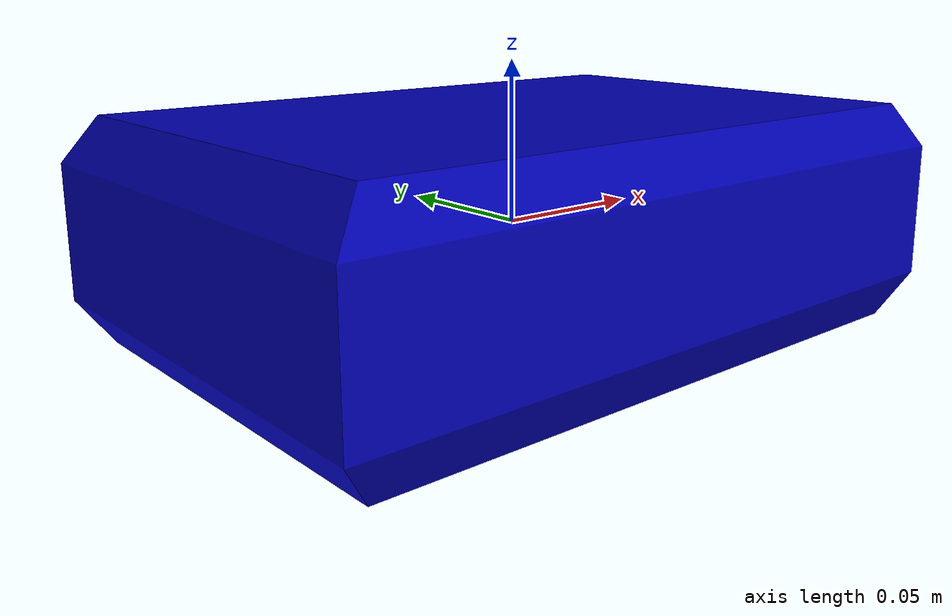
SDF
<sdf version='1.6'>
  <model name="beacon">
    <static>true</static>

    <link name="beacon_link">
      <pose>0 0 0 0 0 0</pose>

      <visual name="beacon_visual">
        <geometry>
          <mesh>
            <uri>model://models/uwb_beacon/meshes/beacon.stl</uri>
            <scale>1 1 1</scale>
          </mesh>
        </geometry>
        <material>
          <ambient> 0.0 0.0 0.6 1</ambient>
          <diffuse> 0.0 0.0 0.7 1</diffuse>
          <specular>0.5 0.5 0.5 1</specular>
          <emissive>0.0 0.0 0.2 1</emissive>
        </material>
      </visual>

      <collision name="beacon_colission">
        <geometry>
          <mesh>
            <uri>model://models/uwb_beacon/meshes/beacon.stl</uri>
            <scale>1 1 1</scale>
          </mesh>
        </geometry>
      </collision>

    </link>
  </model>
</sdf>
